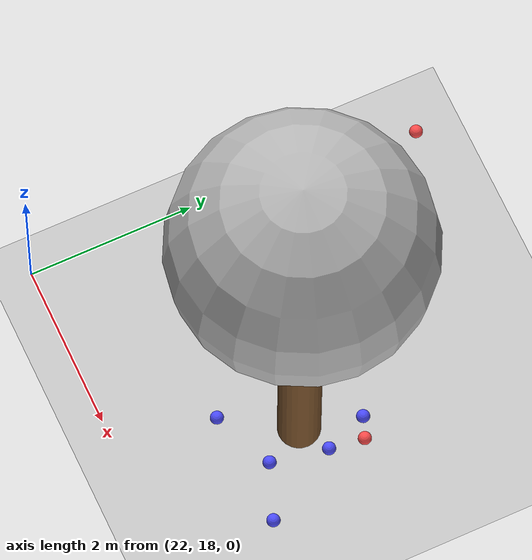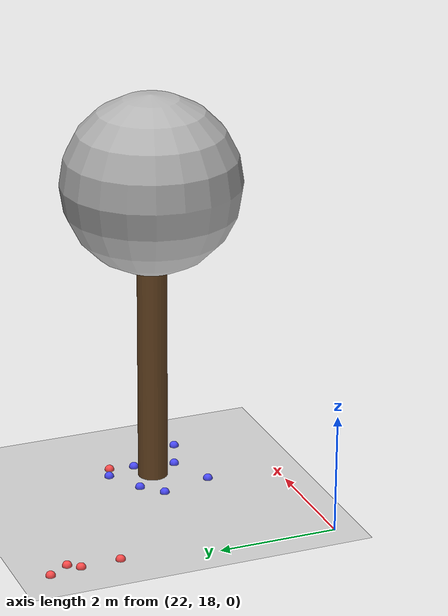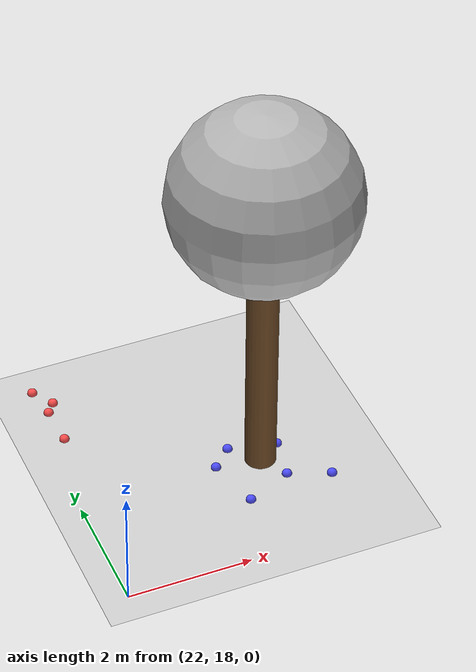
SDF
<sdf version="1.7">
 <world name="default">
  <model name="ground_plane">
   <static>1</static>
   <link name="link">
    <collision name="collision">
     <geometry><plane><normal>0 0 1</normal><size>100 100</size></plane></geometry>
     <surface>
      <contact><collide_bitmask>65535</collide_bitmask></contact>
      <friction><ode><mu>100</mu><mu2>50</mu2></ode></friction>
     </surface>
    </collision>
    <visual name="visual">
     <cast_shadows>0</cast_shadows>
     <geometry><plane><normal>0 0 1</normal><size>100 100</size></plane></geometry>
     <material>
      <script><uri>file://media/materials/scripts/gazebo.material</uri><name>Gazebo/Grey</name></script>
     </material>
    </visual>
   </link>
  </model>
  <model name="tree_simple_47">
   <static>1</static>
   <link name="link">
    <pose>0 0 0.1 0 -0 0</pose>
    <inertial>
     <mass>666</mass>
     <inertia>
      <ixx>0.0861167</ixx>
      <ixy>0</ixy>
      <ixz>0</ixz>
      <iyy>0.0861167</iyy>
      <iyz>0</iyz>
      <izz>0.0861167</izz>
     </inertia>
    </inertial>
    <collision name="collision_trunk">
     <pose>0 0 2 0 -0 0</pose>
     <geometry><cylinder><radius>0.25</radius><length>4</length></cylinder></geometry>
     <surface>
      <contact>
       <poissons_ratio>0.347</poissons_ratio>
       <elastic_modulus>8.8e+09</elastic_modulus>
       <ode><kp>100000</kp><kd>100</kd><max_vel>100</max_vel><min_depth>0.001</min_depth></ode>
      </contact>
      <friction>
       <torsional>
        <coefficient>1</coefficient>
        <use_patch_radius>0</use_patch_radius>
        <surface_radius>0.01</surface_radius>
       </torsional>
      </friction>
     </surface>
    </collision>
    <collision name="collision_treetop">
     <pose>0 0 5.2 0 -0 0</pose>
     <geometry><sphere><radius>1.5</radius></sphere></geometry>
     <surface>
      <contact>
       <poissons_ratio>0.347</poissons_ratio>
       <elastic_modulus>8.8e+09</elastic_modulus>
       <ode><kp>100000</kp><kd>100</kd><max_vel>100</max_vel><min_depth>0.001</min_depth></ode>
      </contact>
      <friction>
       <torsional>
        <coefficient>1</coefficient>
        <use_patch_radius>0</use_patch_radius>
        <surface_radius>0.01</surface_radius>
       </torsional>
      </friction>
     </surface>
    </collision>
    <visual name="trunk">
     <pose>0 0 2 0 -0 0</pose>
     <geometry><cylinder><radius>0.25</radius><length>4</length></cylinder></geometry>
     <material>
      <script>
       <uri>model://tree_simple/scripts</uri>
       <uri>model://tree_simple/materials/textures</uri>
       <name>TreeSimple/Trunk</name>
      </script>
     </material>
    </visual>
    <visual name="treetop">
     <pose>0 0 5.2 0 -0 0</pose>
     <geometry><sphere><radius>1.5</radius></sphere></geometry>
     <material>
      <script>
       <uri>model://tree_simple/scripts</uri>
       <uri>model://tree_simple/materials/textures</uri>
       <name>TreeSimple/Treetop</name>
      </script>
     </material>
    </visual>
   </link>
   <pose>25 20 -0.1 0 -0 0</pose>
  </model>
  <model name="seed_red_194">
   <link name="link">
    <inertial>
     <mass>1</mass>
     <inertia><ixx>0.1</ixx><ixy>0</ixy><ixz>0</ixz><iyy>0.1</iyy><iyz>0</iyz><izz>0.1</izz></inertia>
    </inertial>
    <visual name="visual">
     <geometry><sphere><radius>0.08</radius></sphere></geometry>
     <material>
      <script><name>Gazebo/Grey</name><uri>file://media/materials/scripts/gazebo.material</uri></script>
      <shader type="pixel"><normal_map>__default__</normal_map></shader>
      <ambient>1 0.3 0.3 1</ambient>
      <diffuse>0.7 0.7 0.7 1</diffuse>
      <specular>0.01 0.01 0.01 1</specular>
      <emissive>0 0 0 1</emissive>
     </material>
    </visual>
    <collision name="collision">
     <geometry><sphere><radius>0.0005</radius></sphere></geometry>
     <surface>
      <friction>
       <ode><mu>1</mu><mu2>1</mu2><fdir1>0 0 0</fdir1><slip1>0</slip1><slip2>0</slip2></ode>
       <torsional>
        <coefficient>1</coefficient>
        <patch_radius>0</patch_radius>
        <surface_radius>0</surface_radius>
        <use_patch_radius>1</use_patch_radius>
        <ode><slip>0</slip></ode>
       </torsional>
      </friction>
      <bounce><restitution_coefficient>0</restitution_coefficient><threshold>1e+06</threshold></bounce>
      <contact>
       <collide_without_contact>0</collide_without_contact>
       <collide_without_contact_bitmask>1</collide_without_contact_bitmask>
       <collide_bitmask>1</collide_bitmask>
       <ode>
        <soft_cfm>0</soft_cfm>
        <soft_erp>0.2</soft_erp>
        <kp>1e+13</kp>
        <kd>1</kd>
        <max_vel>0.01</max_vel>
        <min_depth>0</min_depth>
       </ode>
       <bullet>
        <split_impulse>1</split_impulse>
        <split_impulse_penetration_threshold>-0.01</split_impulse_penetration_threshold>
        <soft_cfm>0</soft_cfm>
        <soft_erp>0.2</soft_erp>
        <kp>1e+13</kp>
        <kd>1</kd>
       </bullet>
      </contact>
     </surface>
    </collision>
   </link>
   <static>0</static>
   <pose>22.3169 21.5764 0.0005 0 -0 0</pose>
  </model>
  <model name="seed_red_195">
   <link name="link">
    <inertial>
     <mass>1</mass>
     <inertia><ixx>0.1</ixx><ixy>0</ixy><ixz>0</ixz><iyy>0.1</iyy><iyz>0</iyz><izz>0.1</izz></inertia>
    </inertial>
    <visual name="visual">
     <geometry><sphere><radius>0.08</radius></sphere></geometry>
     <material>
      <script><name>Gazebo/Grey</name><uri>file://media/materials/scripts/gazebo.material</uri></script>
      <shader type="pixel"><normal_map>__default__</normal_map></shader>
      <ambient>1 0.3 0.3 1</ambient>
      <diffuse>0.7 0.7 0.7 1</diffuse>
      <specular>0.01 0.01 0.01 1</specular>
      <emissive>0 0 0 1</emissive>
     </material>
    </visual>
    <collision name="collision">
     <geometry><sphere><radius>0.0005</radius></sphere></geometry>
     <surface>
      <friction>
       <ode><mu>1</mu><mu2>1</mu2><fdir1>0 0 0</fdir1><slip1>0</slip1><slip2>0</slip2></ode>
       <torsional>
        <coefficient>1</coefficient>
        <patch_radius>0</patch_radius>
        <surface_radius>0</surface_radius>
        <use_patch_radius>1</use_patch_radius>
        <ode><slip>0</slip></ode>
       </torsional>
      </friction>
      <bounce><restitution_coefficient>0</restitution_coefficient><threshold>1e+06</threshold></bounce>
      <contact>
       <collide_without_contact>0</collide_without_contact>
       <collide_without_contact_bitmask>1</collide_without_contact_bitmask>
       <collide_bitmask>1</collide_bitmask>
       <ode>
        <soft_cfm>0</soft_cfm>
        <soft_erp>0.2</soft_erp>
        <kp>1e+13</kp>
        <kd>1</kd>
        <max_vel>0.01</max_vel>
        <min_depth>0</min_depth>
       </ode>
       <bullet>
        <split_impulse>1</split_impulse>
        <split_impulse_penetration_threshold>-0.01</split_impulse_penetration_threshold>
        <soft_cfm>0</soft_cfm>
        <soft_erp>0.2</soft_erp>
        <kp>1e+13</kp>
        <kd>1</kd>
       </bullet>
      </contact>
     </surface>
    </collision>
   </link>
   <static>0</static>
   <pose>22.2155 22.7798 0.0005 0 -0 0</pose>
  </model>
  <model name="seed_red_198">
   <link name="link">
    <inertial>
     <mass>1</mass>
     <inertia><ixx>0.1</ixx><ixy>0</ixy><ixz>0</ixz><iyy>0.1</iyy><iyz>0</iyz><izz>0.1</izz></inertia>
    </inertial>
    <visual name="visual">
     <geometry><sphere><radius>0.08</radius></sphere></geometry>
     <material>
      <script><name>Gazebo/Grey</name><uri>file://media/materials/scripts/gazebo.material</uri></script>
      <shader type="pixel"><normal_map>__default__</normal_map></shader>
      <ambient>1 0.3 0.3 1</ambient>
      <diffuse>0.7 0.7 0.7 1</diffuse>
      <specular>0.01 0.01 0.01 1</specular>
      <emissive>0 0 0 1</emissive>
     </material>
    </visual>
    <collision name="collision">
     <geometry><sphere><radius>0.0005</radius></sphere></geometry>
     <surface>
      <friction>
       <ode><mu>1</mu><mu2>1</mu2><fdir1>0 0 0</fdir1><slip1>0</slip1><slip2>0</slip2></ode>
       <torsional>
        <coefficient>1</coefficient>
        <patch_radius>0</patch_radius>
        <surface_radius>0</surface_radius>
        <use_patch_radius>1</use_patch_radius>
        <ode><slip>0</slip></ode>
       </torsional>
      </friction>
      <bounce><restitution_coefficient>0</restitution_coefficient><threshold>1e+06</threshold></bounce>
      <contact>
       <collide_without_contact>0</collide_without_contact>
       <collide_without_contact_bitmask>1</collide_without_contact_bitmask>
       <collide_bitmask>1</collide_bitmask>
       <ode>
        <soft_cfm>0</soft_cfm>
        <soft_erp>0.2</soft_erp>
        <kp>1e+13</kp>
        <kd>1</kd>
        <max_vel>0.01</max_vel>
        <min_depth>0</min_depth>
       </ode>
       <bullet>
        <split_impulse>1</split_impulse>
        <split_impulse_penetration_threshold>-0.01</split_impulse_penetration_threshold>
        <soft_cfm>0</soft_cfm>
        <soft_erp>0.2</soft_erp>
        <kp>1e+13</kp>
        <kd>1</kd>
       </bullet>
      </contact>
     </surface>
    </collision>
   </link>
   <static>0</static>
   <pose>22.4366 22.4303 0.0005 0 -0 0</pose>
  </model>
  <model name="seed_red_201">
   <link name="link">
    <inertial>
     <mass>1</mass>
     <inertia><ixx>0.1</ixx><ixy>0</ixy><ixz>0</ixz><iyy>0.1</iyy><iyz>0</iyz><izz>0.1</izz></inertia>
    </inertial>
    <visual name="visual">
     <geometry><sphere><radius>0.08</radius></sphere></geometry>
     <material>
      <script><name>Gazebo/Grey</name><uri>file://media/materials/scripts/gazebo.material</uri></script>
      <shader type="pixel"><normal_map>__default__</normal_map></shader>
      <ambient>1 0.3 0.3 1</ambient>
      <diffuse>0.7 0.7 0.7 1</diffuse>
      <specular>0.01 0.01 0.01 1</specular>
      <emissive>0 0 0 1</emissive>
     </material>
    </visual>
    <collision name="collision">
     <geometry><sphere><radius>0.0005</radius></sphere></geometry>
     <surface>
      <friction>
       <ode><mu>1</mu><mu2>1</mu2><fdir1>0 0 0</fdir1><slip1>0</slip1><slip2>0</slip2></ode>
       <torsional>
        <coefficient>1</coefficient>
        <patch_radius>0</patch_radius>
        <surface_radius>0</surface_radius>
        <use_patch_radius>1</use_patch_radius>
        <ode><slip>0</slip></ode>
       </torsional>
      </friction>
      <bounce><restitution_coefficient>0</restitution_coefficient><threshold>1e+06</threshold></bounce>
      <contact>
       <collide_without_contact>0</collide_without_contact>
       <collide_without_contact_bitmask>1</collide_without_contact_bitmask>
       <collide_bitmask>1</collide_bitmask>
       <ode>
        <soft_cfm>0</soft_cfm>
        <soft_erp>0.2</soft_erp>
        <kp>1e+13</kp>
        <kd>1</kd>
        <max_vel>0.01</max_vel>
        <min_depth>0</min_depth>
       </ode>
       <bullet>
        <split_impulse>1</split_impulse>
        <split_impulse_penetration_threshold>-0.01</split_impulse_penetration_threshold>
        <soft_cfm>0</soft_cfm>
        <soft_erp>0.2</soft_erp>
        <kp>1e+13</kp>
        <kd>1</kd>
       </bullet>
      </contact>
     </surface>
    </collision>
   </link>
   <static>0</static>
   <pose>22.2976 22.2453 0.0005 0 -0 0</pose>
  </model>
  <model name="seed_blue_80">
   <link name="link">
    <inertial>
     <mass>1</mass>
     <inertia><ixx>0.1</ixx><ixy>0</ixy><ixz>0</ixz><iyy>0.1</iyy><iyz>0</iyz><izz>0.1</izz></inertia>
    </inertial>
    <visual name="visual">
     <geometry><sphere><radius>0.08</radius></sphere></geometry>
     <material>
      <script><name>Gazebo/Grey</name><uri>file://media/materials/scripts/gazebo.material</uri></script>
      <shader type="pixel"><normal_map>__default__</normal_map></shader>
      <ambient>0.3 0.3 1 1</ambient>
      <diffuse>0.7 0.7 0.7 1</diffuse>
      <specular>0.01 0.01 0.01 1</specular>
      <emissive>0 0 0 1</emissive>
     </material>
    </visual>
    <collision name="collision">
     <geometry><sphere><radius>0.0005</radius></sphere></geometry>
     <surface>
      <friction>
       <ode><mu>1</mu><mu2>1</mu2><fdir1>0 0 0</fdir1><slip1>0</slip1><slip2>0</slip2></ode>
       <torsional>
        <coefficient>1</coefficient>
        <patch_radius>0</patch_radius>
        <surface_radius>0</surface_radius>
        <use_patch_radius>1</use_patch_radius>
        <ode><slip>0</slip></ode>
       </torsional>
      </friction>
      <bounce><restitution_coefficient>0</restitution_coefficient><threshold>1e+06</threshold></bounce>
      <contact>
       <collide_without_contact>0</collide_without_contact>
       <collide_without_contact_bitmask>1</collide_without_contact_bitmask>
       <collide_bitmask>1</collide_bitmask>
       <ode>
        <soft_cfm>0</soft_cfm>
        <soft_erp>0.2</soft_erp>
        <kp>1e+13</kp>
        <kd>1</kd>
        <max_vel>0.01</max_vel>
        <min_depth>0</min_depth>
       </ode>
       <bullet>
        <split_impulse>1</split_impulse>
        <split_impulse_penetration_threshold>-0.01</split_impulse_penetration_threshold>
        <soft_cfm>0</soft_cfm>
        <soft_erp>0.2</soft_erp>
        <kp>1e+13</kp>
        <kd>1</kd>
       </bullet>
      </contact>
     </surface>
    </collision>
   </link>
   <static>0</static>
   <pose>24.5 19.2021 0.0005 0 -0 0</pose>
  </model>
  <model name="seed_blue_82">
   <link name="link">
    <inertial>
     <mass>1</mass>
     <inertia><ixx>0.1</ixx><ixy>0</ixy><ixz>0</ixz><iyy>0.1</iyy><iyz>0</iyz><izz>0.1</izz></inertia>
    </inertial>
    <visual name="visual">
     <geometry><sphere><radius>0.08</radius></sphere></geometry>
     <material>
      <script><name>Gazebo/Grey</name><uri>file://media/materials/scripts/gazebo.material</uri></script>
      <shader type="pixel"><normal_map>__default__</normal_map></shader>
      <ambient>0.3 0.3 1 1</ambient>
      <diffuse>0.7 0.7 0.7 1</diffuse>
      <specular>0.01 0.01 0.01 1</specular>
      <emissive>0 0 0 1</emissive>
     </material>
    </visual>
    <collision name="collision">
     <geometry><sphere><radius>0.0005</radius></sphere></geometry>
     <surface>
      <friction>
       <ode><mu>1</mu><mu2>1</mu2><fdir1>0 0 0</fdir1><slip1>0</slip1><slip2>0</slip2></ode>
       <torsional>
        <coefficient>1</coefficient>
        <patch_radius>0</patch_radius>
        <surface_radius>0</surface_radius>
        <use_patch_radius>1</use_patch_radius>
        <ode><slip>0</slip></ode>
       </torsional>
      </friction>
      <bounce><restitution_coefficient>0</restitution_coefficient><threshold>1e+06</threshold></bounce>
      <contact>
       <collide_without_contact>0</collide_without_contact>
       <collide_without_contact_bitmask>1</collide_without_contact_bitmask>
       <collide_bitmask>1</collide_bitmask>
       <ode>
        <soft_cfm>0</soft_cfm>
        <soft_erp>0.2</soft_erp>
        <kp>1e+13</kp>
        <kd>1</kd>
        <max_vel>0.01</max_vel>
        <min_depth>0</min_depth>
       </ode>
       <bullet>
        <split_impulse>1</split_impulse>
        <split_impulse_penetration_threshold>-0.01</split_impulse_penetration_threshold>
        <soft_cfm>0</soft_cfm>
        <soft_erp>0.2</soft_erp>
        <kp>1e+13</kp>
        <kd>1</kd>
       </bullet>
      </contact>
     </surface>
    </collision>
   </link>
   <static>0</static>
   <pose>25.9011 19.2639 0.0005 0 -0 0</pose>
  </model>
  <model name="seed_blue_83">
   <link name="link">
    <inertial>
     <mass>1</mass>
     <inertia><ixx>0.1</ixx><ixy>0</ixy><ixz>0</ixz><iyy>0.1</iyy><iyz>0</iyz><izz>0.1</izz></inertia>
    </inertial>
    <visual name="visual">
     <geometry><sphere><radius>0.08</radius></sphere></geometry>
     <material>
      <script><name>Gazebo/Grey</name><uri>file://media/materials/scripts/gazebo.material</uri></script>
      <shader type="pixel"><normal_map>__default__</normal_map></shader>
      <ambient>0.3 0.3 1 1</ambient>
      <diffuse>0.7 0.7 0.7 1</diffuse>
      <specular>0.01 0.01 0.01 1</specular>
      <emissive>0 0 0 1</emissive>
     </material>
    </visual>
    <collision name="collision">
     <geometry><sphere><radius>0.0005</radius></sphere></geometry>
     <surface>
      <friction>
       <ode><mu>1</mu><mu2>1</mu2><fdir1>0 0 0</fdir1><slip1>0</slip1><slip2>0</slip2></ode>
       <torsional>
        <coefficient>1</coefficient>
        <patch_radius>0</patch_radius>
        <surface_radius>0</surface_radius>
        <use_patch_radius>1</use_patch_radius>
        <ode><slip>0</slip></ode>
       </torsional>
      </friction>
      <bounce><restitution_coefficient>0</restitution_coefficient><threshold>1e+06</threshold></bounce>
      <contact>
       <collide_without_contact>0</collide_without_contact>
       <collide_without_contact_bitmask>1</collide_without_contact_bitmask>
       <collide_bitmask>1</collide_bitmask>
       <ode>
        <soft_cfm>0</soft_cfm>
        <soft_erp>0.2</soft_erp>
        <kp>1e+13</kp>
        <kd>1</kd>
        <max_vel>0.01</max_vel>
        <min_depth>0</min_depth>
       </ode>
       <bullet>
        <split_impulse>1</split_impulse>
        <split_impulse_penetration_threshold>-0.01</split_impulse_penetration_threshold>
        <soft_cfm>0</soft_cfm>
        <soft_erp>0.2</soft_erp>
        <kp>1e+13</kp>
        <kd>1</kd>
       </bullet>
      </contact>
     </surface>
    </collision>
   </link>
   <static>0</static>
   <pose>25.3725 20.2032 0.0005 0 -0 0</pose>
  </model>
  <model name="seed_blue_84">
   <link name="link">
    <inertial>
     <mass>1</mass>
     <inertia><ixx>0.1</ixx><ixy>0</ixy><ixz>0</ixz><iyy>0.1</iyy><iyz>0</iyz><izz>0.1</izz></inertia>
    </inertial>
    <visual name="visual">
     <geometry><sphere><radius>0.08</radius></sphere></geometry>
     <material>
      <script><name>Gazebo/Grey</name><uri>file://media/materials/scripts/gazebo.material</uri></script>
      <shader type="pixel"><normal_map>__default__</normal_map></shader>
      <ambient>0.3 0.3 1 1</ambient>
      <diffuse>0.7 0.7 0.7 1</diffuse>
      <specular>0.01 0.01 0.01 1</specular>
      <emissive>0 0 0 1</emissive>
     </material>
    </visual>
    <collision name="collision">
     <geometry><sphere><radius>0.0005</radius></sphere></geometry>
     <surface>
      <friction>
       <ode><mu>1</mu><mu2>1</mu2><fdir1>0 0 0</fdir1><slip1>0</slip1><slip2>0</slip2></ode>
       <torsional>
        <coefficient>1</coefficient>
        <patch_radius>0</patch_radius>
        <surface_radius>0</surface_radius>
        <use_patch_radius>1</use_patch_radius>
        <ode><slip>0</slip></ode>
       </torsional>
      </friction>
      <bounce><restitution_coefficient>0</restitution_coefficient><threshold>1e+06</threshold></bounce>
      <contact>
       <collide_without_contact>0</collide_without_contact>
       <collide_without_contact_bitmask>1</collide_without_contact_bitmask>
       <collide_bitmask>1</collide_bitmask>
       <ode>
        <soft_cfm>0</soft_cfm>
        <soft_erp>0.2</soft_erp>
        <kp>1e+13</kp>
        <kd>1</kd>
        <max_vel>0.01</max_vel>
        <min_depth>0</min_depth>
       </ode>
       <bullet>
        <split_impulse>1</split_impulse>
        <split_impulse_penetration_threshold>-0.01</split_impulse_penetration_threshold>
        <soft_cfm>0</soft_cfm>
        <soft_erp>0.2</soft_erp>
        <kp>1e+13</kp>
        <kd>1</kd>
       </bullet>
      </contact>
     </surface>
    </collision>
   </link>
   <static>0</static>
   <pose>24.6043 20.3821 0.0005 0 -0 0</pose>
  </model>
  <model name="seed_blue_85">
   <link name="link">
    <inertial>
     <mass>1</mass>
     <inertia><ixx>0.1</ixx><ixy>0</ixy><ixz>0</ixz><iyy>0.1</iyy><iyz>0</iyz><izz>0.1</izz></inertia>
    </inertial>
    <visual name="visual">
     <geometry><sphere><radius>0.08</radius></sphere></geometry>
     <material>
      <script><name>Gazebo/Grey</name><uri>file://media/materials/scripts/gazebo.material</uri></script>
      <shader type="pixel"><normal_map>__default__</normal_map></shader>
      <ambient>0.3 0.3 1 1</ambient>
      <diffuse>0.7 0.7 0.7 1</diffuse>
      <specular>0.01 0.01 0.01 1</specular>
      <emissive>0 0 0 1</emissive>
     </material>
    </visual>
    <collision name="collision">
     <geometry><sphere><radius>0.0005</radius></sphere></geometry>
     <surface>
      <friction>
       <ode><mu>1</mu><mu2>1</mu2><fdir1>0 0 0</fdir1><slip1>0</slip1><slip2>0</slip2></ode>
       <torsional>
        <coefficient>1</coefficient>
        <patch_radius>0</patch_radius>
        <surface_radius>0</surface_radius>
        <use_patch_radius>1</use_patch_radius>
        <ode><slip>0</slip></ode>
       </torsional>
      </friction>
      <bounce><restitution_coefficient>0</restitution_coefficient><threshold>1e+06</threshold></bounce>
      <contact>
       <collide_without_contact>0</collide_without_contact>
       <collide_without_contact_bitmask>1</collide_without_contact_bitmask>
       <collide_bitmask>1</collide_bitmask>
       <ode>
        <soft_cfm>0</soft_cfm>
        <soft_erp>0.2</soft_erp>
        <kp>1e+13</kp>
        <kd>1</kd>
        <max_vel>0.01</max_vel>
        <min_depth>0</min_depth>
       </ode>
       <bullet>
        <split_impulse>1</split_impulse>
        <split_impulse_penetration_threshold>-0.01</split_impulse_penetration_threshold>
        <soft_cfm>0</soft_cfm>
        <soft_erp>0.2</soft_erp>
        <kp>1e+13</kp>
        <kd>1</kd>
       </bullet>
      </contact>
     </surface>
    </collision>
   </link>
   <static>0</static>
   <pose>25.245 19.5183 0.0005 0 -0 0</pose>
  </model>
  <model name="seed_blue_86">
   <link name="link">
    <inertial>
     <mass>1</mass>
     <inertia><ixx>0.1</ixx><ixy>0</ixy><ixz>0</ixz><iyy>0.1</iyy><iyz>0</iyz><izz>0.1</izz></inertia>
    </inertial>
    <visual name="visual">
     <geometry><sphere><radius>0.08</radius></sphere></geometry>
     <material>
      <script><name>Gazebo/Grey</name><uri>file://media/materials/scripts/gazebo.material</uri></script>
      <shader type="pixel"><normal_map>__default__</normal_map></shader>
      <ambient>0.3 0.3 1 1</ambient>
      <diffuse>0.7 0.7 0.7 1</diffuse>
      <specular>0.01 0.01 0.01 1</specular>
      <emissive>0 0 0 1</emissive>
     </material>
    </visual>
    <collision name="collision">
     <geometry><sphere><radius>0.0005</radius></sphere></geometry>
     <surface>
      <friction>
       <ode><mu>1</mu><mu2>1</mu2><fdir1>0 0 0</fdir1><slip1>0</slip1><slip2>0</slip2></ode>
       <torsional>
        <coefficient>1</coefficient>
        <patch_radius>0</patch_radius>
        <surface_radius>0</surface_radius>
        <use_patch_radius>1</use_patch_radius>
        <ode><slip>0</slip></ode>
       </torsional>
      </friction>
      <bounce><restitution_coefficient>0</restitution_coefficient><threshold>1e+06</threshold></bounce>
      <contact>
       <collide_without_contact>0</collide_without_contact>
       <collide_without_contact_bitmask>1</collide_without_contact_bitmask>
       <collide_bitmask>1</collide_bitmask>
       <ode>
        <soft_cfm>0</soft_cfm>
        <soft_erp>0.2</soft_erp>
        <kp>1e+13</kp>
        <kd>1</kd>
        <max_vel>0.01</max_vel>
        <min_depth>0</min_depth>
       </ode>
       <bullet>
        <split_impulse>1</split_impulse>
        <split_impulse_penetration_threshold>-0.01</split_impulse_penetration_threshold>
        <soft_cfm>0</soft_cfm>
        <soft_erp>0.2</soft_erp>
        <kp>1e+13</kp>
        <kd>1</kd>
       </bullet>
      </contact>
     </surface>
    </collision>
   </link>
   <static>0</static>
   <pose>25.1769 20.7204 0.0005 0 -0 0</pose>
  </model>
  <model name="seed_blue_88">
   <link name="link">
    <inertial>
     <mass>1</mass>
     <inertia><ixx>0.1</ixx><ixy>0</ixy><ixz>0</ixz><iyy>0.1</iyy><iyz>0</iyz><izz>0.1</izz></inertia>
    </inertial>
    <visual name="visual">
     <geometry><sphere><radius>0.08</radius></sphere></geometry>
     <material>
      <script><name>Gazebo/Grey</name><uri>file://media/materials/scripts/gazebo.material</uri></script>
      <shader type="pixel"><normal_map>__default__</normal_map></shader>
      <ambient>0.3 0.3 1 1</ambient>
      <diffuse>0.7 0.7 0.7 1</diffuse>
      <specular>0.01 0.01 0.01 1</specular>
      <emissive>0 0 0 1</emissive>
     </material>
    </visual>
    <collision name="collision">
     <geometry><sphere><radius>0.0005</radius></sphere></geometry>
     <surface>
      <friction>
       <ode><mu>1</mu><mu2>1</mu2><fdir1>0 0 0</fdir1><slip1>0</slip1><slip2>0</slip2></ode>
       <torsional>
        <coefficient>1</coefficient>
        <patch_radius>0</patch_radius>
        <surface_radius>0</surface_radius>
        <use_patch_radius>1</use_patch_radius>
        <ode><slip>0</slip></ode>
       </torsional>
      </friction>
      <bounce><restitution_coefficient>0</restitution_coefficient><threshold>1e+06</threshold></bounce>
      <contact>
       <collide_without_contact>0</collide_without_contact>
       <collide_without_contact_bitmask>1</collide_without_contact_bitmask>
       <collide_bitmask>1</collide_bitmask>
       <ode>
        <soft_cfm>0</soft_cfm>
        <soft_erp>0.2</soft_erp>
        <kp>1e+13</kp>
        <kd>1</kd>
        <max_vel>0.01</max_vel>
        <min_depth>0</min_depth>
       </ode>
       <bullet>
        <split_impulse>1</split_impulse>
        <split_impulse_penetration_threshold>-0.01</split_impulse_penetration_threshold>
        <soft_cfm>0</soft_cfm>
        <soft_erp>0.2</soft_erp>
        <kp>1e+13</kp>
        <kd>1</kd>
       </bullet>
      </contact>
     </surface>
    </collision>
   </link>
   <static>0</static>
   <pose>24.2761 20.067 0.0005 0 -0 0</pose>
  </model>
  <model name="seed_red_228">
   <link name="link">
    <inertial>
     <mass>1</mass>
     <inertia><ixx>0.1</ixx><ixy>0</ixy><ixz>0</ixz><iyy>0.1</iyy><iyz>0</iyz><izz>0.1</izz></inertia>
    </inertial>
    <visual name="visual">
     <geometry><sphere><radius>0.08</radius></sphere></geometry>
     <material>
      <script><name>Gazebo/Grey</name><uri>file://media/materials/scripts/gazebo.material</uri></script>
      <shader type="pixel"><normal_map>__default__</normal_map></shader>
      <ambient>1 0.3 0.3 1</ambient>
      <diffuse>0.7 0.7 0.7 1</diffuse>
      <specular>0.01 0.01 0.01 1</specular>
      <emissive>0 0 0 1</emissive>
     </material>
    </visual>
    <collision name="collision">
     <geometry><sphere><radius>0.0005</radius></sphere></geometry>
     <surface>
      <friction>
       <ode><mu>1</mu><mu2>1</mu2><fdir1>0 0 0</fdir1><slip1>0</slip1><slip2>0</slip2></ode>
       <torsional>
        <coefficient>1</coefficient>
        <patch_radius>0</patch_radius>
        <surface_radius>0</surface_radius>
        <use_patch_radius>1</use_patch_radius>
        <ode><slip>0</slip></ode>
       </torsional>
      </friction>
      <bounce><restitution_coefficient>0</restitution_coefficient><threshold>1e+06</threshold></bounce>
      <contact>
       <collide_without_contact>0</collide_without_contact>
       <collide_without_contact_bitmask>1</collide_without_contact_bitmask>
       <collide_bitmask>1</collide_bitmask>
       <ode>
        <soft_cfm>0</soft_cfm>
        <soft_erp>0.2</soft_erp>
        <kp>1e+13</kp>
        <kd>1</kd>
        <max_vel>0.01</max_vel>
        <min_depth>0</min_depth>
       </ode>
       <bullet>
        <split_impulse>1</split_impulse>
        <split_impulse_penetration_threshold>-0.01</split_impulse_penetration_threshold>
        <soft_cfm>0</soft_cfm>
        <soft_erp>0.2</soft_erp>
        <kp>1e+13</kp>
        <kd>1</kd>
       </bullet>
      </contact>
     </surface>
    </collision>
   </link>
   <static>0</static>
   <pose>25.4281 20.6246 0.0005 0 -0 0</pose>
  </model>
 </world>
</sdf>
